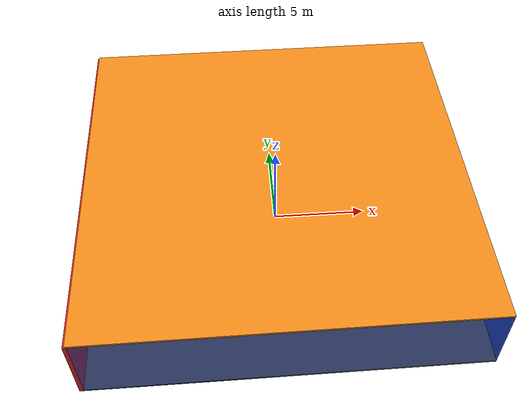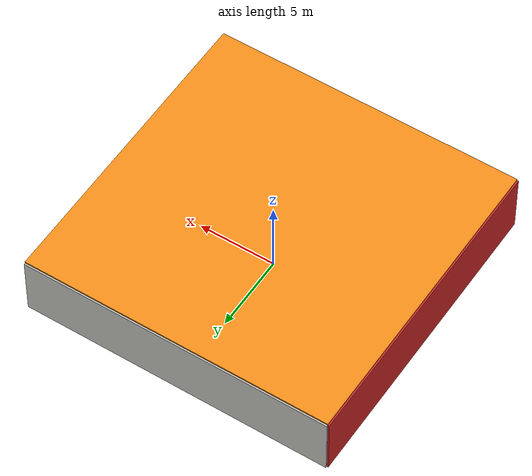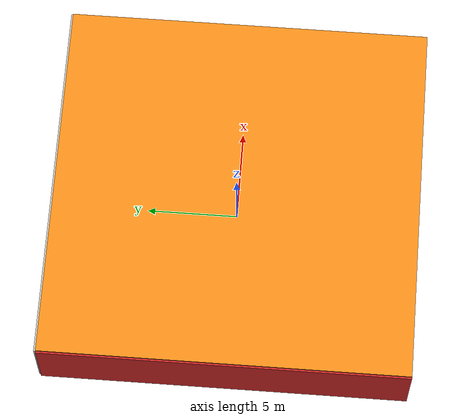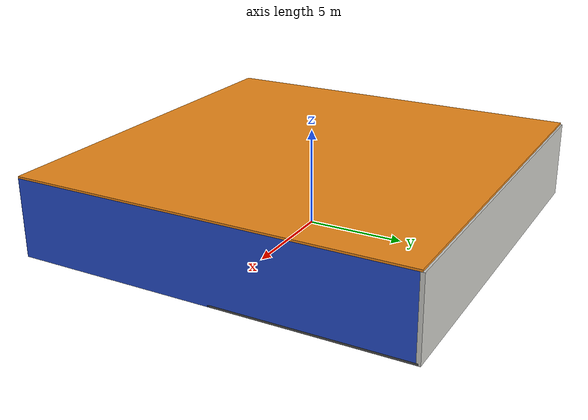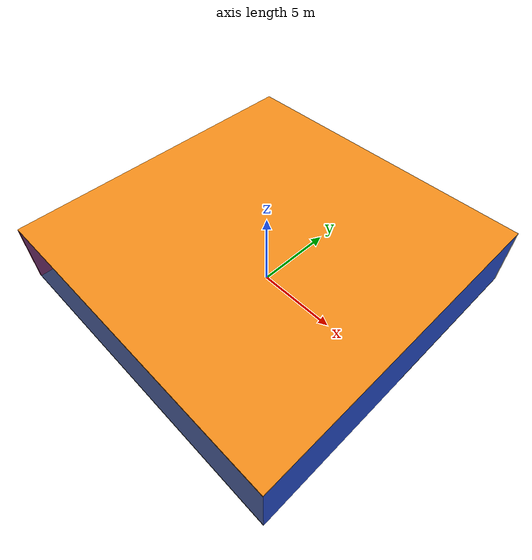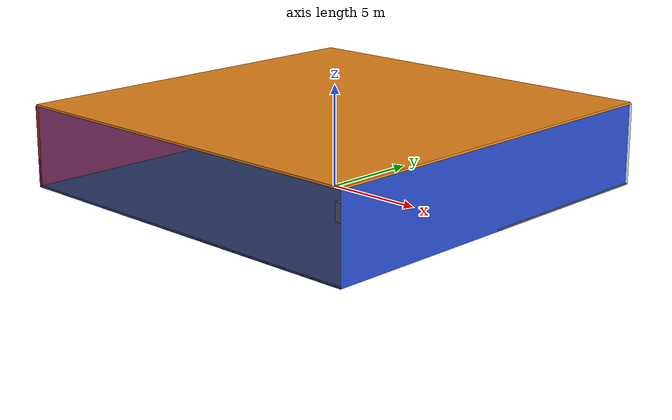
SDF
<sdf version="1.4">
 <world name="default">
  <physics type="ode">
   <max_step_size>0.001</max_step_size>
   <real_time_factor>1</real_time_factor>
   <real_time_update_rate>1000</real_time_update_rate>
   <gravity>0 0 -9.8</gravity>
  </physics>
  <scene><ambient>0.4 0.4 0.4 1</ambient><background>0.7 0.7 0.7 1</background><shadows>1</shadows></scene>
  <model name="Surrounding">
   <static>1</static>
   <link name="Ceiling">
    <collision name="Ceiling_Collision"><geometry><box><size>20 20 0.1</size></box></geometry></collision>
    <visual name="Ceiling_Visual">
     <geometry><box><size>20 20 0.1</size></box></geometry>
     <material>
      <script><uri>file://media/materials/scripts/gazebo.material</uri><name>Gazebo/Orange</name></script>
     </material>
    </visual>
    <pose>0 0 4.05 0 0 0</pose>
   </link>
   <link name="Wall_South">
    <collision name="Wall_South_Collision">
     <geometry><box><size>20 0 4</size></box></geometry>
     <pose>0 0 2 0 -0 0</pose>
    </collision>
    <visual name="Wall_South_Visual">
     <pose>0 0 2 0 -0 0</pose>
     <geometry><box><size>20 0 4</size></box></geometry>
     <material>
      <script><uri>file://media/materials/scripts/gazebo.material</uri><name>Gazebo/BlueTransparent</name></script>
     </material>
    </visual>
    <velocity_decay><linear>0</linear><angular>0</angular></velocity_decay>
    <pose>0 -10 0 0 -0 0</pose>
   </link>
   <link name="Wall_East">
    <collision name="Wall_21_Collision">
     <geometry><box><size>20 0 4</size></box></geometry>
     <pose>0 0 2 0 -0 0</pose>
    </collision>
    <visual name="Wall_21_Visual">
     <pose>0 0 2 0 -0 0</pose>
     <geometry><box><size>20 0 4</size></box></geometry>
     <material>
      <script><uri>file://media/materials/scripts/gazebo.material</uri><name>Gazebo/BlueGlow</name></script>
     </material>
    </visual>
    <velocity_decay><linear>0</linear><angular>0</angular></velocity_decay>
    <pose>10 0 0 0 -0 1.5708</pose>
   </link>
   <link name="Wall_North">
    <collision name="Wall_22_Collision">
     <geometry><box><size>20 0.2 4</size></box></geometry>
     <pose>0 0 2 0 -0 0</pose>
    </collision>
    <visual name="Wall_22_Visual">
     <pose>0 0 2 0 -0 0</pose>
     <geometry><box><size>20 0.2 4</size></box></geometry>
     <material>
      <script><uri>file://media/materials/scripts/gazebo.material</uri><name>Gazebo/CeilingTiled</name></script>
     </material>
    </visual>
    <velocity_decay><linear>0</linear><angular>0</angular></velocity_decay>
    <pose>0 10 0 0 -0 0</pose>
   </link>
   <link name="Wall_West">
    <collision name="Wall_23_Collision">
     <geometry><box><size>20 0.2 4</size></box></geometry>
     <pose>0 0 2 0 -0 0</pose>
    </collision>
    <visual name="Wall_23_Visual">
     <pose>0 0 2 0 -0 0</pose>
     <geometry><box><size>20 0.2 4</size></box></geometry>
     <material>
      <script><uri>file://media/materials/scripts/gazebo.material</uri><name>Gazebo/Red</name></script>
     </material>
    </visual>
    <velocity_decay><linear>0</linear><angular>0</angular></velocity_decay>
    <pose>-10 0 0 0 0 -1.5708</pose>
   </link>
   <link name="Ground_link">
    <collision name="collision">
     <pose>0 0 .05 0 -0 0</pose>
     <geometry><box><size>20 20 0.1</size></box></geometry>
    </collision>
    <visual name="visual">
     <pose>0 0 .05 0 -0 0</pose>
     <geometry><box><size>20 20 0.1</size></box></geometry>
     <material>
      <script><uri>file://media/materials/scripts/gazebo.material</uri><name>Gazebo/DarkGrey</name></script>
     </material>
    </visual>
   </link>
   <static>1</static>
  </model>
  <spherical_coordinates>
   <surface_model>EARTH_WGS84</surface_model>
   <latitude_deg>0</latitude_deg>
   <longitude_deg>0</longitude_deg>
   <elevation>0</elevation>
   <heading_deg>0</heading_deg>
  </spherical_coordinates>
  <light name="lightball_0" type="diffuse">
   <diffuse>0.8 0.8 0.8 1</diffuse>
   <specular>0.2 0.2 0.2 1</specular>
   <attenuation>
    <range>100</range>
    <constant>0.7</constant>
    <linear>0.01</linear>
    <quadratic>0.001</quadratic>
   </attenuation>
   <direction>-0.5 0.1 -0.9</direction>
   <pose>7.7454387108 8.2486003665 3.63070871399 0 0 0</pose>
  </light>
  <light name="lightball_1" type="diffuse">
   <diffuse>0.8 0.8 0.8 1</diffuse>
   <specular>0.2 0.2 0.2 1</specular>
   <attenuation>
    <range>100</range>
    <constant>0.7</constant>
    <linear>0.01</linear>
    <quadratic>0.001</quadratic>
   </attenuation>
   <direction>-0.5 0.1 -0.9</direction>
   <pose>-7.7278201893 0.390329415657 2.70573123388 0 0 0</pose>
  </light>
  <light name="lightball_2" type="diffuse">
   <diffuse>0.8 0.8 0.8 1</diffuse>
   <specular>0.2 0.2 0.2 1</specular>
   <attenuation>
    <range>100</range>
    <constant>0.7</constant>
    <linear>0.01</linear>
    <quadratic>0.001</quadratic>
   </attenuation>
   <direction>-0.5 0.1 -0.9</direction>
   <pose>-1.20428634595 2.60784295831 2.69652726139 0 0 0</pose>
  </light>
  <light name="lightball_3" type="diffuse">
   <diffuse>0.8 0.8 0.8 1</diffuse>
   <specular>0.2 0.2 0.2 1</specular>
   <attenuation>
    <range>100</range>
    <constant>0.7</constant>
    <linear>0.01</linear>
    <quadratic>0.001</quadratic>
   </attenuation>
   <direction>-0.5 0.1 -0.9</direction>
   <pose>8.18096010191 8.56953400435 2.97065073274 0 0 0</pose>
  </light>
  <light name="lightball_4" type="diffuse">
   <diffuse>0.8 0.8 0.8 1</diffuse>
   <specular>0.2 0.2 0.2 1</specular>
   <attenuation>
    <range>100</range>
    <constant>0.7</constant>
    <linear>0.01</linear>
    <quadratic>0.001</quadratic>
   </attenuation>
   <direction>-0.5 0.1 -0.9</direction>
   <pose>7.1261451503 6.7926585196 3.87479818726 0 0 0</pose>
  </light>
  <include>
   <uri>model://robocup_3Dsim_goal</uri>
   <pose>-4.72440998103 7.32647785244 0 0 0 0.359369154821</pose>
  </include>
  <include><uri>model://table</uri><pose>-0.886441707973 5.10830222305 0 0 0 0.933940007234</pose></include>
  <include><uri>model://cabinet</uri><pose>4.35189717198 -4.00716613135 0 0 0 3.04263367943</pose></include>
  <include><uri>model://cabinet</uri><pose>6.62501071557 -1.03266615727 0 0 0 0.534461726671</pose></include>
 </world>
</sdf>

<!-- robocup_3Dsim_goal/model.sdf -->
<sdf version="1.5">
  <model name="robocup_3d_goal">
    <static>true</static>
    <link name="left_post">
      <pose>0 1.05 0.45 0 0 0</pose>
      <collision name="collision">
        <geometry>
          <cylinder>
            <radius>0.05</radius>
            <length>0.9</length>
          </cylinder>
        </geometry>
      </collision>
      <visual name="visual">
        <geometry>
          <cylinder>
            <radius>0.05</radius>
            <length>0.9</length>
          </cylinder>
        </geometry>
        <material>
          <script>
            <uri>file://media/materials/scripts/gazebo.material</uri>
            <name>Gazebo/ZincYellow</name>
          </script>
        </material>
      </visual>
    </link>
    <link name="left_support_horiz_lower">
      <pose>0.30 1.05 0.01 0 0 0</pose>
      <collision name="collision">
        <geometry>
          <box>
            <size>0.50 0.02 0.02</size>
          </box>
        </geometry>
      </collision>
      <visual name="visual">
        <geometry>
          <box>
            <size>0.50 0.02 0.02</size>
          </box>
        </geometry>
        <material>
          <script>
            <uri>file://media/materials/scripts/gazebo.material</uri>
            <name>Gazebo/White</name>
          </script>
        </material>
      </visual>
    </link>
    <link name="left_support_horiz_upper">
      <pose>0.30 1.05 0.79 0 0 0</pose>
      <collision name="collision">
        <geometry>
          <box>
            <size>0.50 0.02 0.02</size>
          </box>
        </geometry>
      </collision>
      <visual name="visual">
        <geometry>
          <box>
            <size>0.50 0.02 0.02</size>
          </box>
        </geometry>
        <material>
          <script>
            <uri>file://media/materials/scripts/gazebo.material</uri>
            <name>Gazebo/White</name>
          </script>
        </material>
      </visual>
    </link>
    <link name="left_support_vertical">
      <pose>0.56 1.05 0.4 0 1.5708 0</pose>
      <collision name="collision">
        <geometry>
          <box>
            <size>0.80 0.02 0.02</size>
          </box>
        </geometry>
      </collision>
      <visual name="visual">
        <geometry>
          <box>
            <size>0.80 0.02 0.02</size>
          </box>
        </geometry>
        <material>
          <script>
            <uri>file://media/materials/scripts/gazebo.material</uri>
            <name>Gazebo/White</name>
          </script>
        </material>
      </visual>
    </link>
    <link name="right_support_horiz_lower">
      <pose>0.30 -1.05 0.01 0 0 0</pose>
      <collision name="collision">
        <geometry>
          <box>
            <size>0.50 0.02 0.02</size>
          </box>
        </geometry>
      </collision>
      <visual name="visual">
        <geometry>
          <box>
            <size>0.50 0.02 0.02</size>
          </box>
        </geometry>
        <material>
          <script>
            <uri>file://media/materials/scripts/gazebo.material</uri>
            <name>Gazebo/White</name>
          </script>
        </material>
      </visual>
    </link>
    <link name="right_support_horiz_upper">
      <pose>0.30 -1.05 0.79 0 0 0</pose>
      <collision name="collision">
        <geometry>
          <box>
            <size>0.50 0.02 0.02</size>
          </box>
        </geometry>
      </collision>
      <visual name="visual">
        <geometry>
          <box>
            <size>0.50 0.02 0.02</size>
          </box>
        </geometry>
        <material>
          <script>
            <uri>file://media/materials/scripts/gazebo.material</uri>
            <name>Gazebo/White</name>
          </script>
        </material>
      </visual>
    </link>
    <link name="right_support_vertical">
      <pose>0.56 -1.05 0.4 0 1.5708 0</pose>
      <collision name="collision">
        <geometry>
          <box>
            <size>0.80 0.02 0.02</size>
          </box>
        </geometry>
      </collision>
      <visual name="visual">
        <geometry>
          <box>
            <size>0.80 0.02 0.02</size>
          </box>
        </geometry>
        <material>
          <script>
            <uri>file://media/materials/scripts/gazebo.material</uri>
            <name>Gazebo/White</name>
          </script>
        </material>
      </visual>
    </link>
    <link name="center_support_horiz_lower">
      <pose>0.56 0 0.01 0 1.5708 0</pose>
      <collision name="collision">
        <geometry>
          <box>
            <size>0.02 2.08 0.02</size>
          </box>
        </geometry>
      </collision>
      <visual name="visual">
        <geometry>
          <box>
            <size>0.02 2.08 0.02</size>
          </box>
        </geometry>
        <material>
          <script>
            <uri>file://media/materials/scripts/gazebo.material</uri>
            <name>Gazebo/White</name>
          </script>
        </material>
      </visual>
    </link>
    <link name="center_support_horiz_upper">
      <pose>0.56 0 0.79 0 1.5708 0</pose>
      <collision name="collision">
        <geometry>
          <box>
            <size>0.02 2.08 0.02</size>
          </box>
        </geometry>
      </collision>
      <visual name="visual">
        <geometry>
          <box>
            <size>0.02 2.08 0.02</size>
          </box>
        </geometry>
        <material>
          <script>
            <uri>file://media/materials/scripts/gazebo.material</uri>
            <name>Gazebo/White</name>
          </script>
        </material>
      </visual>
    </link>
    <link name="right_post">
      <pose>0 -1.05 0.45 0 0 0</pose>
      <collision name="collision">
        <geometry>
          <cylinder>
            <radius>0.05</radius>
            <length>0.9</length>
          </cylinder>
        </geometry>
      </collision>
      <visual name="visual">
        <geometry>
          <cylinder>
            <radius>0.05</radius>
            <length>0.9</length>
          </cylinder>
        </geometry>
        <material>
          <script>
            <uri>file://media/materials/scripts/gazebo.material</uri>
            <name>Gazebo/ZincYellow</name>
          </script>
        </material>
      </visual>
    </link>
    <link name="crossbar">
      <pose>0 0 0.85 1.57 1.57 0</pose>
      <collision name="collision">
        <geometry>
          <cylinder>
            <radius>0.05</radius>
            <length>2.0</length>
          </cylinder>
        </geometry>
      </collision>
      <visual name="visual">
        <geometry>
          <cylinder>
            <radius>0.05</radius>
            <length>2.0</length>
          </cylinder>
        </geometry>
        <material>
          <script>
            <uri>file://media/materials/scripts/gazebo.material</uri>
            <name>Gazebo/ZincYellow</name>
          </script>
        </material>
      </visual>
    </link>
    <link name="center_net">
      <pose>0.56 0 0.40 0 0 0</pose>
      <collision name="collision">
        <geometry>
          <box>
            <size>0.01 2.1 0.80</size>
          </box>
        </geometry>
      </collision>
      <visual name="visual">
        <geometry>
          <box>
            <size>0.01 2.1 0.80</size>
          </box>
        </geometry>
        <material>
          <script>
            <uri>model://../model_source/models/robocup09_spl_field/materials/scripts/</uri>
            <uri>model://../model_source/models/robocup09_spl_field/materials/textures/</uri>
            <name>RoboCup/Net</name>
          </script>
        </material>
      </visual>
    </link>
    <link name="left_net">
      <pose>0.30 1.05 0.40 0 0 0</pose>
      <collision name="collision">
        <geometry>
          <box>
            <size>0.50 0.01 0.76</size>
          </box>
        </geometry>
      </collision>
      <visual name="visual">
        <geometry>
          <box>
            <size>0.50 0.01 0.76</size>
          </box>
        </geometry>
        <material>
          <script>
            <uri>model://../model_source/models/robocup09_spl_field/materials/scripts/</uri>
            <uri>model://../model_source/models/robocup09_spl_field/materials/textures/</uri>
            <name>RoboCup/Net</name>
          </script>
        </material>
      </visual>
    </link>
    <link name="right_net">
      <pose>0.30 -1.05 0.40 0 0 0</pose>
      <collision name="collision">
        <geometry>
          <box>
            <size>0.50 0.01 0.76</size>
          </box>
        </geometry>
      </collision>
      <visual name="visual">
        <geometry>
          <box>
            <size>0.50 0.01 0.76</size>
          </box>
        </geometry>
        <material>
          <script>
            <uri>model://../model_source/models/robocup09_spl_field/materials/scripts/</uri>
            <uri>model://../model_source/models/robocup09_spl_field/materials/textures/</uri>
            <name>RoboCup/Net</name>
          </script>
        </material>
      </visual>
    </link>
  </model>
</sdf>

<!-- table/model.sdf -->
<sdf version="1.5">
  <model name="table">
    <static>true</static>
    <link name="link">
      <collision name="surface">
        <pose>0 0 1.0 0 0 0</pose>
        <geometry>
          <box>
            <size>1.5 0.8 0.03</size>
          </box>
        </geometry>
        <surface>
          <friction>
            <ode>
              <mu>0.6</mu>
              <mu2>0.6</mu2>
            </ode>
          </friction>
        </surface>
      </collision>
      <visual name="visual1">
        <pose>0 0 1.0 0 0 0</pose>
        <geometry>
          <box>
            <size>1.5 0.8 0.03</size>
          </box>
        </geometry>
        <material>
          <script>
            <uri>model://media/materials/scripts/gazebo.material</uri>
            <name>Gazebo/Wood</name>
          </script>
        </material>
      </visual>
      <collision name="front_left_leg">
        <pose>0.68 0.38 0.5 0 0 0</pose>
        <geometry>
          <cylinder>
            <radius>0.02</radius>
            <length>1.0</length>
          </cylinder>
        </geometry>
      </collision>
      <visual name="front_left_leg">
        <pose>0.68 0.38 0.5 0 0 0</pose>
        <geometry>
          <cylinder>
            <radius>0.02</radius>
            <length>1.0</length>
          </cylinder>
        </geometry>
        <material>
          <script>
            <uri>model://media/materials/scripts/gazebo.material</uri>
            <name>Gazebo/Grey</name>
          </script>
        </material>
      </visual>
      <collision name="front_right_leg">
        <pose>0.68 -0.38 0.5 0 0 0</pose>
        <geometry>
          <cylinder>
            <radius>0.02</radius>
            <length>1.0</length>
          </cylinder>
        </geometry>
      </collision>
      <visual name="front_right_leg">
        <pose>0.68 -0.38 0.5 0 0 0</pose>
        <geometry>
          <cylinder>
            <radius>0.02</radius>
            <length>1.0</length>
          </cylinder>
        </geometry>
        <material>
          <script>
            <uri>model://media/materials/scripts/gazebo.material</uri>
            <name>Gazebo/Grey</name>
          </script>
        </material>
      </visual>
      <collision name="back_right_leg">
        <pose>-0.68 -0.38 0.5 0 0 0</pose>
        <geometry>
          <cylinder>
            <radius>0.02</radius>
            <length>1.0</length>
          </cylinder>
        </geometry>
      </collision>
      <visual name="back_right_leg">
        <pose>-0.68 -0.38 0.5 0 0 0</pose>
        <geometry>
          <cylinder>
            <radius>0.02</radius>
            <length>1.0</length>
          </cylinder>
        </geometry>
        <material>
          <script>
            <uri>model://media/materials/scripts/gazebo.material</uri>
            <name>Gazebo/Grey</name>
          </script>
        </material>
      </visual>
      <collision name="back_left_leg">
        <pose>-0.68 0.38 0.5 0 0 0</pose>
        <geometry>
          <cylinder>
            <radius>0.02</radius>
            <length>1.0</length>
          </cylinder>
        </geometry>
      </collision>
      <visual name="back_left_leg">
        <pose>-0.68 0.38 0.5 0 0 0</pose>
        <geometry>
          <cylinder>
            <radius>0.02</radius>
            <length>1.0</length>
          </cylinder>
        </geometry>
        <material>
          <script>
            <uri>model://media/materials/scripts/gazebo.material</uri>
            <name>Gazebo/Grey</name>
          </script>
        </material>
      </visual>
    </link>
  </model>
</sdf>

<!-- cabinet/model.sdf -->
<sdf version="1.5">
  <model name="cabinet">
    <static>true</static>
    <link name="cabinet_bottom_plate">
      <inertial>
        <pose>0 0 -1 0 0 0</pose>
        <inertia>
          <ixx>2.050000</ixx>
          <ixy>0</ixy>
          <ixz>0</ixz>
          <iyy>2.050000</iyy>
          <iyz>0</iyz>
          <izz>2.050000</izz>
        </inertia>
        <mass>25.000000</mass>
      </inertial>
      <collision name="cabinet_bottom_plate_geom">
        <pose>0 0 0.010000 0 0 0</pose>
        <geometry>
          <box>
            <size>0.450000 0.450000 0.020000</size>
          </box>
        </geometry>
      </collision>
      <visual name="cabinet_bottom_plate_geom_visual">
        <pose>0 0 0.010000 0 0 0</pose>
        <geometry>
          <box>
            <size>0.450000 0.450000 0.020000</size>
          </box>
        </geometry>
        <material>
          <script>
            <uri>model://media/materials/scripts/gazebo.material</uri>
            <name>Gazebo/Wood</name>
          </script>
        </material>
      </visual>
      <collision name="cabinet_bottom_plate_geom_cabinet_back_plate">
        <pose>0.235000 0 0.510000 0 0 0</pose>
        <geometry>
          <box>
            <size>0.020000 0.450000 1.020000</size>
          </box>
        </geometry>
      </collision>
      <visual name="cabinet_bottom_plate_geom_cabinet_back_plate_visual">
        <pose>0.235000 0 0.510000 0 0 0</pose>
        <geometry>
          <box>
            <size>0.020000 0.450000 1.020000</size>
          </box>
        </geometry>
        <material>
          <script>
            <uri>model://media/materials/scripts/gazebo.material</uri>
            <name>Gazebo/Wood</name>
          </script>
        </material>
      </visual>
      <collision name="cabinet_bottom_plate_geom_cabinet_left_plate">
        <pose>0 0.235000 0.510000 0 0 0</pose>
        <geometry>
          <box>
            <size>0.450000 0.020000 1.020000</size>
          </box>
        </geometry>
      </collision>
      <visual name="cabinet_bottom_plate_geom_cabinet_left_plate_visual">
        <pose>0 0.235000 0.510000 0 0 0</pose>
        <geometry>
          <box>
            <size>0.450000 0.020000 1.020000</size>
          </box>
        </geometry>
        <material>
          <script>
            <uri>model://media/materials/scripts/gazebo.material</uri>
            <name>Gazebo/Wood</name>
          </script>
        </material>
      </visual>
      <collision name="cabinet_bottom_plate_geom_cabinet_middle_plate">
        <pose>0 0 0.510000 0 0 0</pose>
        <geometry>
          <box>
            <size>0.450000 0.450000 0.020000</size>
          </box>
        </geometry>
      </collision>
      <visual name="cabinet_bottom_plate_geom_cabinet_middle_plate_visual">
        <pose>0 0 0.510000 0 0 0</pose>
        <geometry>
          <box>
            <size>0.450000 0.450000 0.020000</size>
          </box>
        </geometry>
        <material>
          <script>
            <uri>model://media/materials/scripts/gazebo.material</uri>
            <name>Gazebo/Wood</name>
          </script>
        </material>
      </visual>
      <collision name="cabinet_bottom_plate_geom_cabinet_right_plate">
        <pose>0 -0.235000 0.510000 0 0 0</pose>
        <geometry>
          <box>
            <size>0.450000 0.020000 1.020000</size>
          </box>
        </geometry>
      </collision>
      <visual name="cabinet_bottom_plate_geom_cabinet_right_plate_visual">
        <pose>0 -0.235000 0.510000 0 0 0</pose>
        <geometry>
          <box>
            <size>0.450000 0.020000 1.020000</size>
          </box>
        </geometry>
        <material>
          <script>
            <uri>model://media/materials/scripts/gazebo.material</uri>
            <name>Gazebo/Wood</name>
          </script>
        </material>
      </visual>
      <collision name="cabinet_bottom_plate_geom_cabinet_top_plate">
        <pose>0 0 1.010000 0 0 0</pose>
        <geometry>
          <box>
            <size>0.450000 0.450000 0.020000</size>
          </box>
        </geometry>
      </collision>
      <visual name="cabinet_bottom_plate_geom_cabinet_top_plate_visual">
        <pose>0 0 1.010000 0 0 0</pose>
        <geometry>
          <box>
            <size>0.450000 0.450000 0.020000</size>
          </box>
        </geometry>
        <material>
          <script>
            <uri>model://media/materials/scripts/gazebo.material</uri>
            <name>Gazebo/Wood</name>
          </script>
        </material>
      </visual>
    </link>
  </model>
</sdf>
